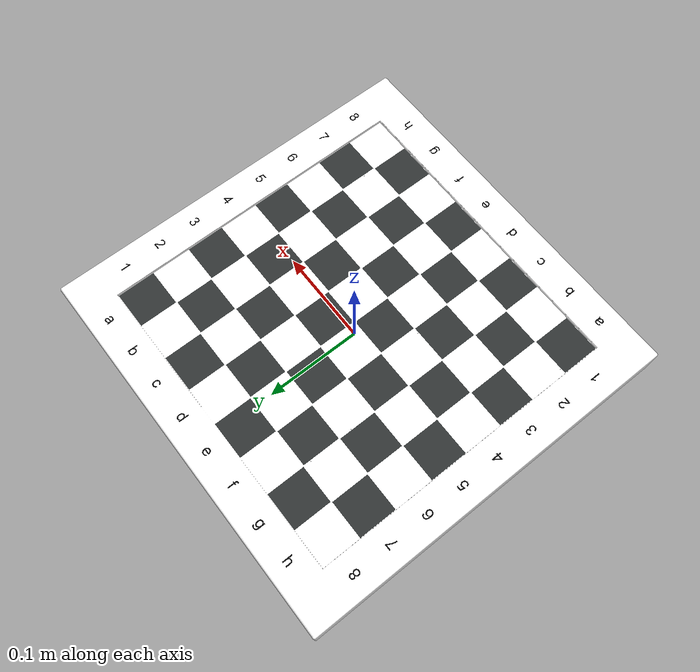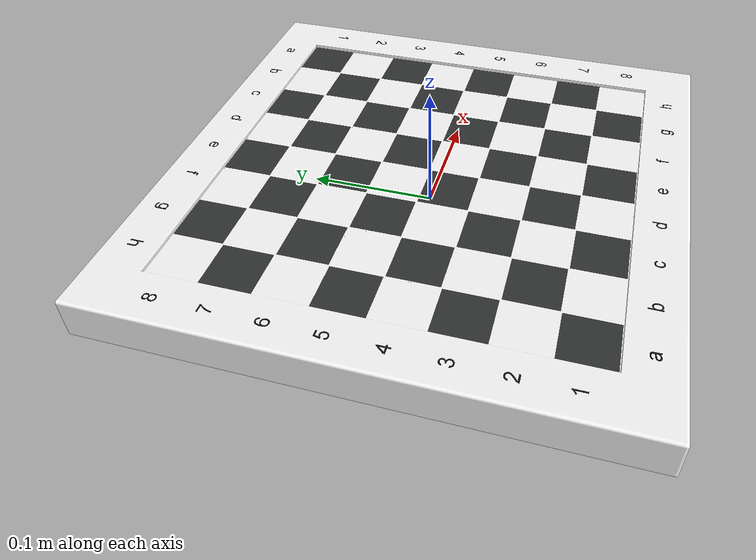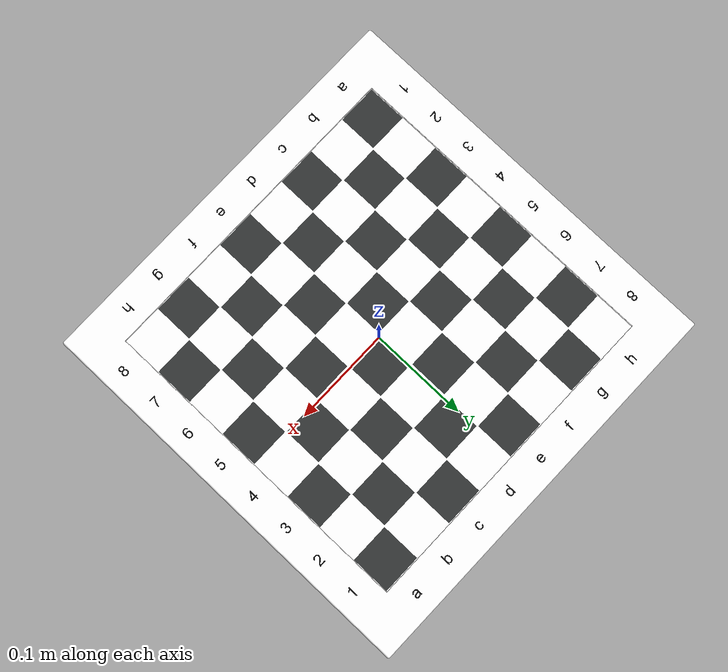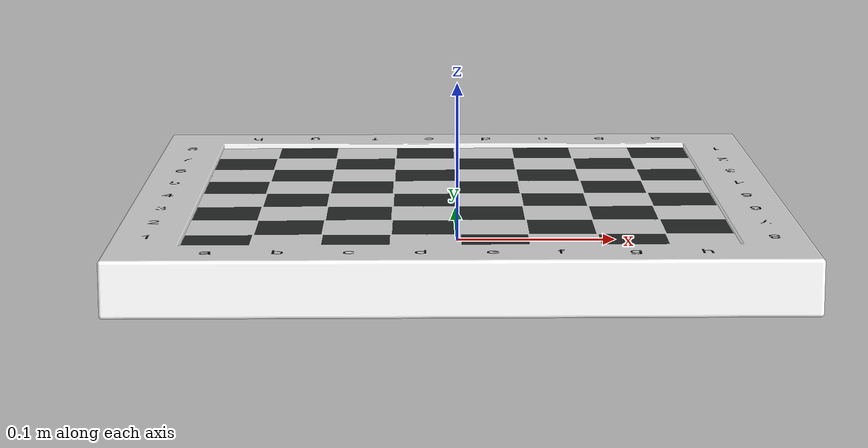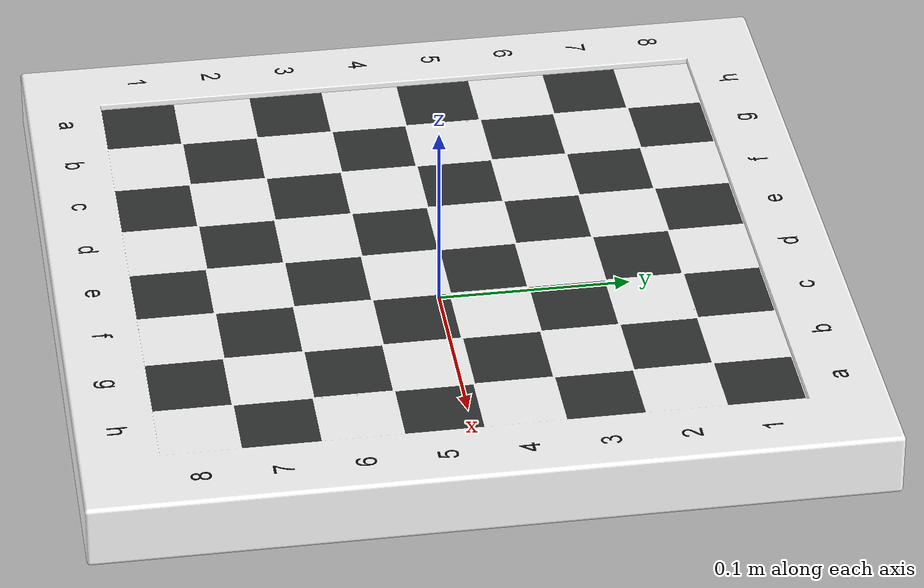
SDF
<?xml version='1.0'?>
<sdf version='1.7'>
  <model name='chessboard'>

      <link name='link'>
        <inertial>
          <pose>0 0 0.0165 0 -0 0</pose>
          <mass>0.5</mass>
          <inertia>
            <ixx>0.00950655</ixx>
            <ixy>0</ixy>
            <ixz>0</ixz>
            <iyy>0.00543452</iyy>
            <iyz>0</iyz>
            <izz>0.0114843</izz>
          </inertia>
        </inertial>
        <self_collide>0</self_collide>
        <enable_wind>0</enable_wind>
        <kinematic>0</kinematic>
        <pose>0 0 0 0 -0 0</pose>
        <visual name='main_visual'>
          <geometry>
            <mesh>
              <uri>model://chessboard/meshes/chessboard.dae</uri>
            </mesh>
          </geometry>
          <material>
            <script>
              <uri>model://chessboard/materials/untitled.mtl</uri>
              <name>__default__</name>
            </script>
          </material>
        </visual>
        <collision name='collision'>
          <laser_retro>0</laser_retro>
          <max_contacts>10</max_contacts>
          <pose>0 0 0 0 -0 0</pose>
          <geometry>
            <mesh>
              <uri>model://chessboard/meshes/chessboard.dae</uri>
            </mesh>
          </geometry>
          <surface>
            <contact>
              <ode/>
            </contact>
            <bounce/>
            <friction>
              <torsional>
                <ode/>
              </torsional>
              <ode/>
            </friction>
          </surface>
        </collision>
      </link>

    <static>1</static>

  </model>
</sdf>
